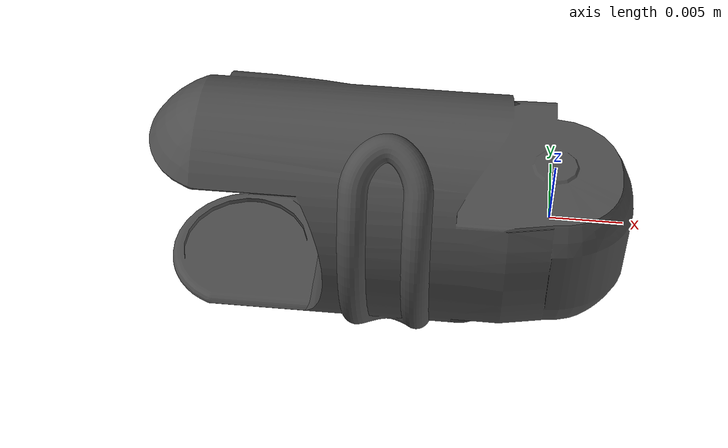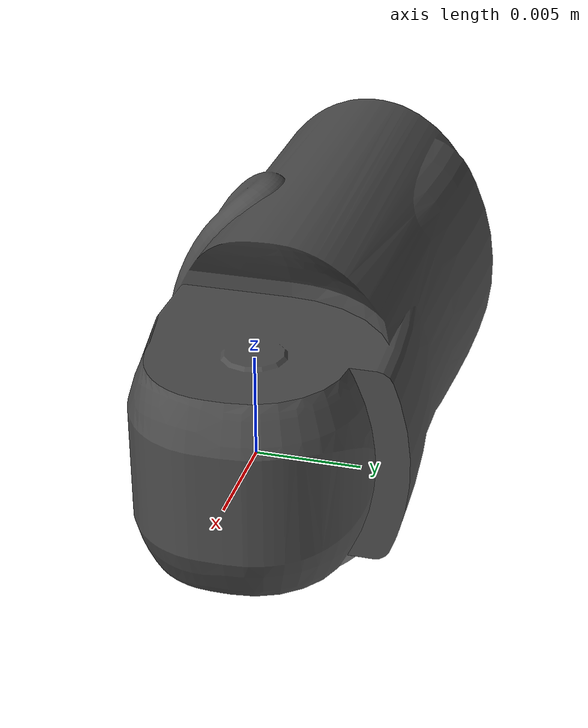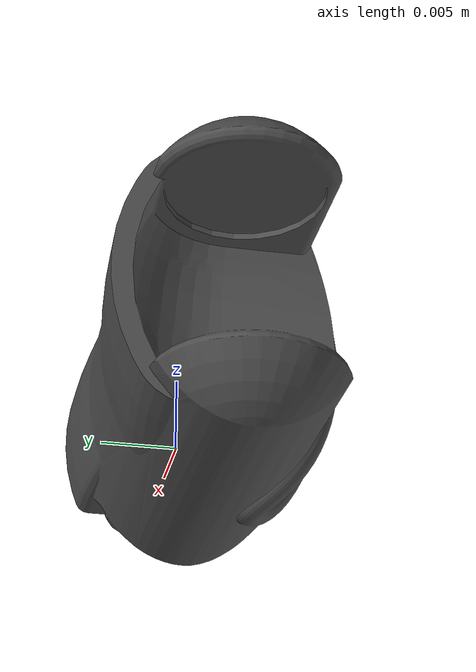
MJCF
<mujoco model="thumb_phalanx_link">
  <default>
    <default class="visual">
      <geom group="2" type="mesh" contype="0" conaffinity="0"/>
    </default>
    <default class="collision">
      <geom group="3" type="mesh"/>
    </default>
  </default>
  <asset>
    <material name="mtl_thumb_phalanx_link" specular="0.20000000000000004" shininess="1.0" rgba="0.29803922 0.29803922 0.29803922 1.0"/>
    <mesh file="thumb_phalanx_link.obj"/>
  </asset>
  <worldbody>
    <body name="thumb_phalanx_link">
      <geom material="mtl_thumb_phalanx_link" mesh="thumb_phalanx_link" class="visual"/>
      <geom mesh="thumb_phalanx_link" class="collision"/>
    </body>
  </worldbody>
</mujoco>
